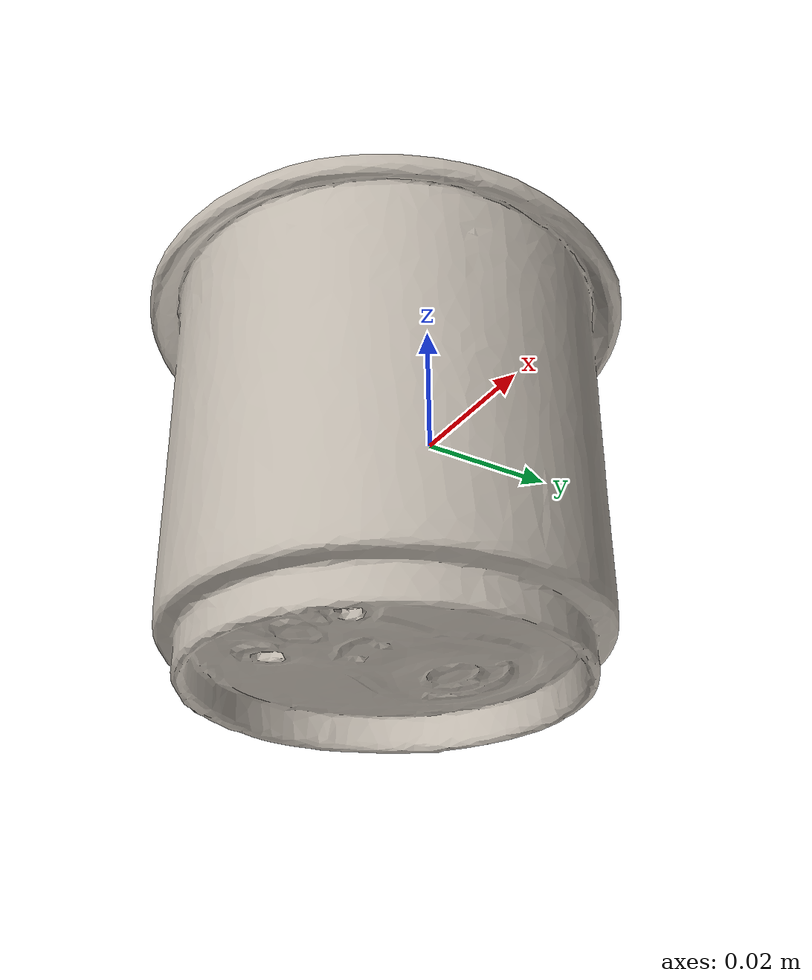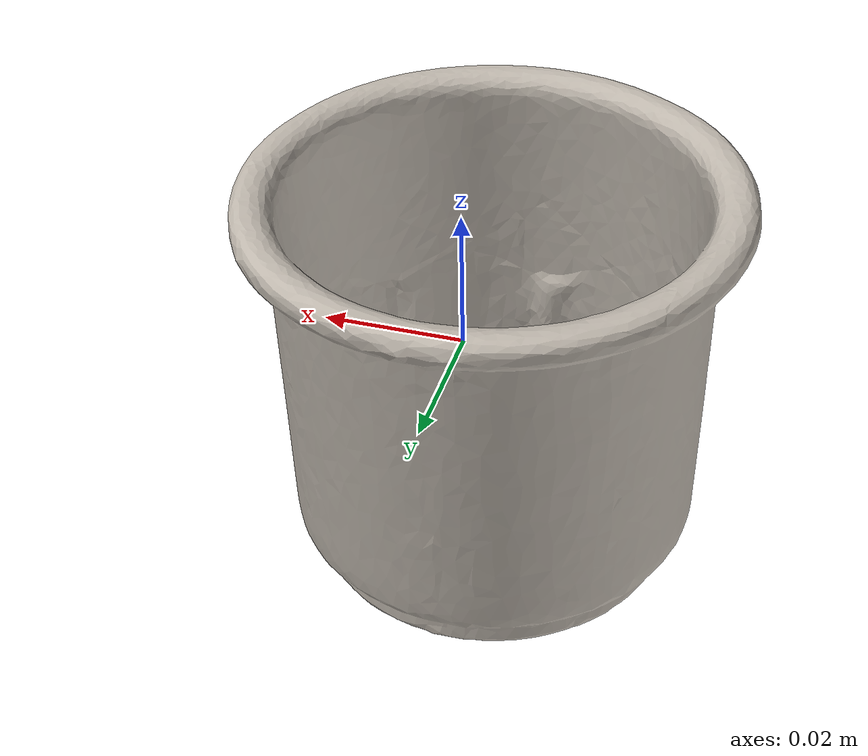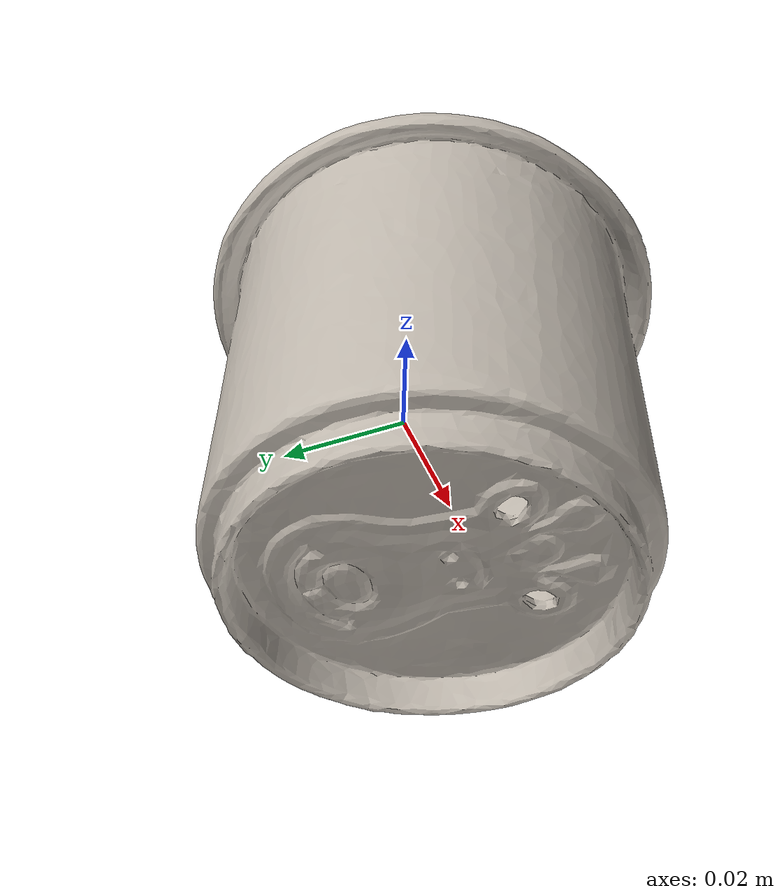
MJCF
<mujoco model="bread">
  <asset>
    <mesh file="nontextured.stl" name="obj_mesh" scale="0.8 0.8 0.8"/>
    <texture file="../../../../../textures/bread.png" type="2d" name="tex-bread" />
    <material name="bread" reflectance="0.7" texrepeat="15 15" texture="tex-bread" texuniform="true"/>
  </asset>
  <worldbody>
    <body>
      <body name="collision">
        <geom pos="-0.014443000000000001 -0.027991500000000002 -0.036265000000000006" mesh="obj_mesh" type="mesh" solimp="0.998 0.998 0.001" solref="0.001 1" density="50" friction="0.95 0.3 0.1"  material="bread" group="1" condim="4"/>
      </body>
      <body name="visual">
        <geom pos="-0.014443000000000001 -0.027991500000000002 -0.036265000000000006" mesh="obj_mesh" type="mesh" material="bread"  conaffinity="0" contype="0"  group="0" mass="0.0001"/>
        <geom pos="-0.014443000000000001 -0.027991500000000002 -0.036265000000000006" mesh="obj_mesh" type="mesh" material="bread"  conaffinity="0" contype="0"  group="1" mass="0.0001"/>
      </body>
      <site rgba="0 0 0 0" size="0.005" pos="0 0 -0.036982" name="bottom_site"/>
      <site rgba="0 0 0 0" size="0.005" pos="0 0 0.036982" name="top_site"/>
      <site rgba="0 0 0 0" size="0.005" pos="0.043409 0.0438355 0.036982" name="horizontal_radius_site"/>
    </body>
  </worldbody>
</mujoco>
